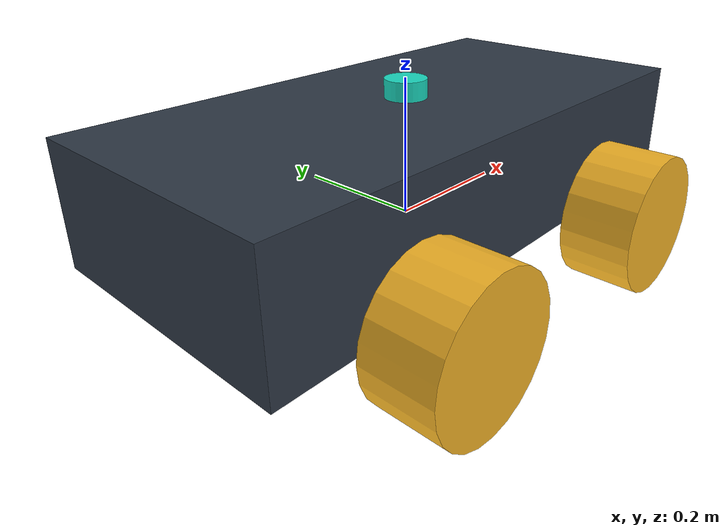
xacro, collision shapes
<?xml version="1.0"?>
<robot xmlns:xacro="http://www.ros.org/wiki/xacro">

	<xacro:include filename="inertial_macros.xacro"/>

	<material name="chassis_metal">
		<color rgba="0.18 0.22 0.27 1"/>
	</material>

	<material name="chassis_rubber">
		<color rgba="0.03 0.03 0.04 1"/>
	</material>

	<material name="chassis_panel">
		<color rgba="0.98 0.45 0.08 1"/>
	</material>

	<material name="chassis_clear">
		<color rgba="0.55 0.75 0.95 0.45"/>
	</material>

	<material name="wheel_hub">
		<color rgba="0.95 0.70 0.15 1"/>
	</material>

	<material name="wheel_tire">
		<color rgba="0.02 0.02 0.02 1"/>
	</material>

	<material name="lidar_accent">
		<color rgba="0.10 0.85 0.75 1"/>
	</material>

	<!-- DAE meshes keep the original visual look -->
	<xacro:property name="elm_scale" value="1.0"/>

	<!-- BASE LINK -->
	<link name="base_link">

	</link>

	<!-- Nav2 AMCL default uses base_footprint as robot base frame -->
	<joint name="base_footprint_joint" type="fixed">
		<parent link="base_link"/>
		<child link="base_footprint"/>
		<origin xyz="0 0 -0.10" rpy="0 0 0"/>
	</joint>

	<link name="base_footprint"/>

	<!-- Low-mounted ballast to keep CoM near the ground and reduce roll-over -->
	<joint name="ballast_joint" type="fixed">
		<parent link="base_link"/>
		<child link="ballast_link"/>
		<origin xyz="0 0 0.03" rpy="0 0 0"/>
	</joint>

	<link name="ballast_link">
		<xacro:inertial_box mass="2.2" x="0.25" y="0.18" z="0.04">
        	<origin xyz="0 0 0" rpy="0 0 0"/>
        </xacro:inertial_box>
	</link>

	<!-- CHASSIS -->
	<joint name="chassis_joint" type="fixed">
		<parent link="base_link"/>
		<child link="chassis_link"/>
		<origin xyz="0 0 0"/>
	</joint>

		<link name="chassis_link">
		<visual>
			<origin xyz="0 0 0" rpy="0 0 0"/>
			<geometry>
					<mesh filename="package://four_wheeled_robot/meshes/BaseMetal.dae" scale="${elm_scale} ${elm_scale} ${elm_scale}"/>
			</geometry>
			<material name="chassis_metal"/>
		</visual>
		<visual>
			<origin xyz="0 0 0" rpy="0 0 0"/>
			<geometry>
					<mesh filename="package://four_wheeled_robot/meshes/BaseRubber.dae" scale="${elm_scale} ${elm_scale} ${elm_scale}"/>
			</geometry>
			<material name="chassis_rubber"/>
		</visual>
		<visual>
			<origin xyz="0 0 0" rpy="0 0 0"/>
			<geometry>
					<mesh filename="package://four_wheeled_robot/meshes/BasePlastic.dae" scale="${elm_scale} ${elm_scale} ${elm_scale}"/>
			</geometry>
			<material name="chassis_panel"/>
		</visual>
			<visual>
				<origin xyz="0 0 0" rpy="0 0 0"/>
				<geometry>
						<mesh filename="package://four_wheeled_robot/meshes/BaseClear.dae" scale="${elm_scale} ${elm_scale} ${elm_scale}"/>
				</geometry>
				<material name="chassis_clear"/>
			</visual>
		<collision>
			<origin xyz="0 0 0.0875"/>
			<geometry>
				<box size="0.8 0.389 0.171"/>
			</geometry>
		</collision>

		<xacro:inertial_box mass="0.5" x="0.8" y="0.389" z="0.171">
        	<origin xyz="0 0 0.0875" rpy="0 0 0"/>
        </xacro:inertial_box>
	</link>

	<!-- LIDAR -->
	<joint name="lidar_joint" type="fixed">
		<parent link="chassis_link"/>
		<child link="lidar_link"/>
		<origin xyz="0 0 0.18" rpy="0 0 0"/>
	</joint>

	<link name="lidar_link">
		<visual>
			<origin xyz="0 0 0" rpy="0 0 0"/>
			<geometry>
				<cylinder radius="0.03" length="0.04"/>
			</geometry>
			<material name="lidar_accent"/>
		</visual>
		<collision>
			<origin xyz="0 0 0" rpy="0 0 0"/>
			<geometry>
				<cylinder radius="0.03" length="0.04"/>
			</geometry>
		</collision>
		<xacro:inertial_cylinder mass="0.05" length="0.04" radius="0.03">
        	<origin xyz="0 0 0" rpy="0 0 0"/>
        </xacro:inertial_cylinder>
	</link>

		<gazebo reference="lidar_link">
			<sensor name="lidar_sensor" type="ray">
				<always_on>true</always_on>
					<visualize>true</visualize>
				<update_rate>8</update_rate>
			<pose>0 0 0 0 0 0</pose>
			<ray>
				<scan>
					<horizontal>
						<samples>360</samples>
						<resolution>1</resolution>
						<min_angle>-3.14159</min_angle>
						<max_angle>3.14159</max_angle>
					</horizontal>
				</scan>
				<range>
					<min>0.12</min>
					<max>8.0</max>
					<resolution>0.01</resolution>
				</range>
				<noise>
					<type>gaussian</type>
					<mean>0.0</mean>
					<stddev>0.01</stddev>
				</noise>
			</ray>
				<plugin name="gazebo_ros_lidar" filename="libgazebo_ros_ray_sensor.so">
					<ros>
						<remapping>~/out:=/four_wheeled_robot/scan</remapping>
					</ros>
					<output_type>sensor_msgs/LaserScan</output_type>
					<frame_name>lidar_link</frame_name>
			</plugin>
		</sensor>
	</gazebo>

	<!-- WHEEL1 -->
	<joint name="wheel1_joint" type="continuous">
		<parent link="base_link"/>
		<child link="wheel1_link"/>
		<origin xyz="0.2 0.25 0" rpy="0 0 0"/>
		<axis xyz="0 1 0"/>
		<limit effort="80" velocity="20" />
	    <dynamics damping="1.0" friction="1.0" />
	</joint>

		<link name="wheel1_link">
		<visual>
			<origin xyz="0 0 0" rpy="0 0 ${pi}"/>
			<geometry>
					<mesh filename="package://four_wheeled_robot/meshes/HubMotor.dae" scale="${elm_scale} ${elm_scale} ${elm_scale}"/>
			</geometry>
			<material name="wheel_hub"/>
		</visual>
			<visual>
				<origin xyz="0 0 0" rpy="0 0 ${pi}"/>
				<geometry>
						<mesh filename="package://four_wheeled_robot/meshes/RubberWheel.dae" scale="${elm_scale} ${elm_scale} ${elm_scale}"/>
				</geometry>
				<material name="wheel_tire"/>
			</visual>
		<collision>
			<origin xyz="0 0 0" rpy="${pi/2} 0 0"/>
			<geometry>
				<cylinder radius="0.1" length="0.1"/>
			</geometry>
		</collision>

		<xacro:inertial_cylinder mass="0.1" length="0.1" radius="0.1">
	        	<origin xyz="0 0 0" rpy="${pi/2} 0 0"/>
	        </xacro:inertial_cylinder>
	</link>

	<!-- WHEEL2 -->
	<joint name="wheel2_joint" type="continuous">
		<parent link="base_link"/>
		<child link="wheel2_link"/>
		<origin xyz="0.2 -0.25 0" rpy="0 0 0"/>
		<axis xyz="0 1 0"/>
		<limit effort="80" velocity="20" />
	    <dynamics damping="1.0" friction="1.0" />
	</joint>

		<link name="wheel2_link">
		<visual>
			<origin xyz="0 0 0" rpy="0 0 0"/>
			<geometry>
					<mesh filename="package://four_wheeled_robot/meshes/HubMotor.dae" scale="${elm_scale} ${elm_scale} ${elm_scale}"/>
			</geometry>
			<material name="wheel_hub"/>
		</visual>
			<visual>
				<origin xyz="0 0 0" rpy="0 0 0"/>
				<geometry>
						<mesh filename="package://four_wheeled_robot/meshes/RubberWheel.dae" scale="${elm_scale} ${elm_scale} ${elm_scale}"/>
				</geometry>
				<material name="wheel_tire"/>
			</visual>
		<collision>
			<origin xyz="0 0 0" rpy="${pi/2} 0 0"/>
			<geometry>
				<cylinder radius="0.1" length="0.1"/>
			</geometry>
		</collision>

		<xacro:inertial_cylinder mass="0.1" length="0.1" radius="0.1">
	        	<origin xyz="0 0 0" rpy="${pi/2} 0 0"/>
	        </xacro:inertial_cylinder>
	</link>

	<!-- WHEEL3 -->
	<joint name="wheel3_joint" type="continuous">
		<parent link="base_link"/>
		<child link="wheel3_link"/>
		<origin xyz="-0.2 0.25 0" rpy="0 0 0"/>
		<axis xyz="0 1 0"/>
		<limit effort="80" velocity="20" />
	    <dynamics damping="1.0" friction="1.0" />
	</joint>

		<link name="wheel3_link">
		<visual>
			<origin xyz="0 0 0" rpy="0 0 ${pi}"/>
			<geometry>
					<mesh filename="package://four_wheeled_robot/meshes/HubMotor.dae" scale="${elm_scale} ${elm_scale} ${elm_scale}"/>
			</geometry>
			<material name="wheel_hub"/>
		</visual>
			<visual>
				<origin xyz="0 0 0" rpy="0 0 ${pi}"/>
				<geometry>
						<mesh filename="package://four_wheeled_robot/meshes/RubberWheel.dae" scale="${elm_scale} ${elm_scale} ${elm_scale}"/>
				</geometry>
				<material name="wheel_tire"/>
			</visual>
		<collision>
			<origin xyz="0 0 0" rpy="${pi/2} 0 0"/>
			<geometry>
				<cylinder radius="0.1" length="0.1"/>
			</geometry>
		</collision>

		<xacro:inertial_cylinder mass="0.1" length="0.1" radius="0.1">
	        	<origin xyz="0 0 0" rpy="${pi/2} 0 0"/>
	        </xacro:inertial_cylinder>
	</link>

	<!-- WHEEL4 -->
	<joint name="wheel4_joint" type="continuous">
		<parent link="base_link"/>
		<child link="wheel4_link"/>
		<origin xyz="-0.2 -0.25 0" rpy="0 0 0"/>
		<axis xyz="0 1 0"/>
		<limit effort="80" velocity="20" />
	    <dynamics damping="1.0" friction="1.0" />
	</joint>

			<link name="wheel4_link">
		<visual>
			<origin xyz="0 0 0" rpy="0 0 0"/>
			<geometry>
					<mesh filename="package://four_wheeled_robot/meshes/HubMotor.dae" scale="${elm_scale} ${elm_scale} ${elm_scale}"/>
			</geometry>
			<material name="wheel_hub"/>
		</visual>
			<visual>
				<origin xyz="0 0 0" rpy="0 0 0"/>
				<geometry>
						<mesh filename="package://four_wheeled_robot/meshes/RubberWheel.dae" scale="${elm_scale} ${elm_scale} ${elm_scale}"/>
				</geometry>
				<material name="wheel_tire"/>
			</visual>
		<collision>
			<origin xyz="0 0 0" rpy="${pi/2} 0 0"/>
			<geometry>
				<cylinder radius="0.1" length="0.1"/>
			</geometry>
		</collision>

		<xacro:inertial_cylinder mass="0.1" length="0.1" radius="0.1">
	        	<origin xyz="0 0 0" rpy="${pi/2} 0 0"/>
	        </xacro:inertial_cylinder>
		</link>

	</robot>
